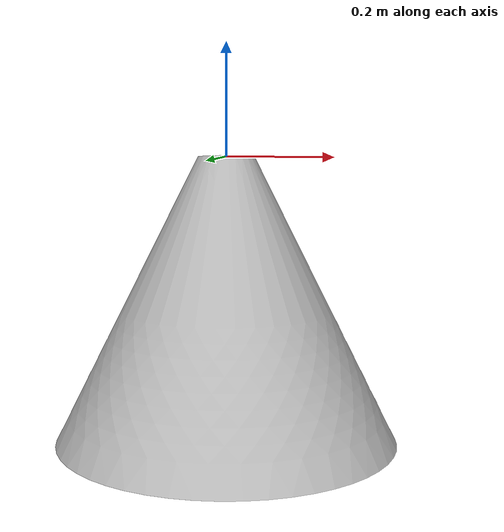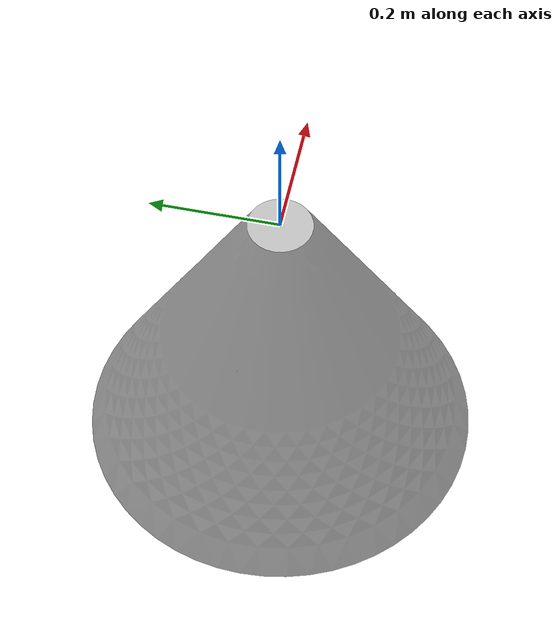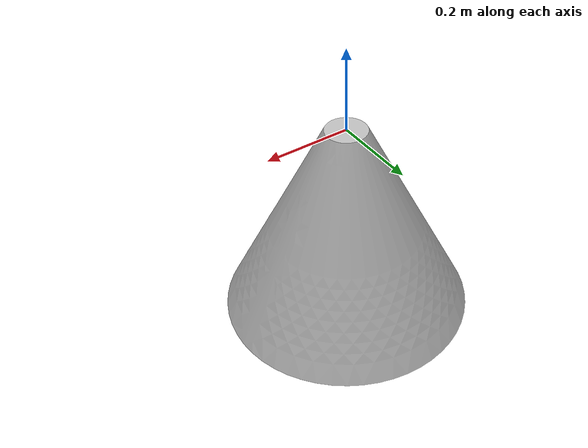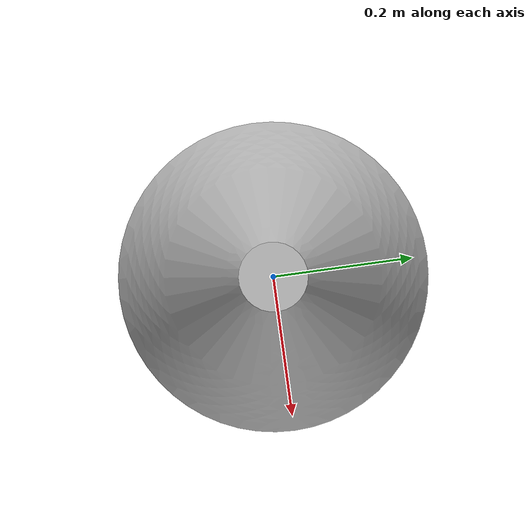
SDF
<?xml version="1.0" ?>
<sdf version="1.5">
  <model name="simple_fire">
    <static>true</static>

   <link name="link">
      <collision name="collision">
        <geometry>
          <mesh>
            <uri>model://simple_fire/mesh/simple_fire.dae</uri>
          </mesh>
        </geometry>
      </collision>
      <visual name="visual">
        <geometry>
          <mesh>
            <uri>model://simple_fire/mesh/simple_fire.dae</uri>
          </mesh>
        </geometry>
      </visual>
    </link>
  </model>
</sdf>
